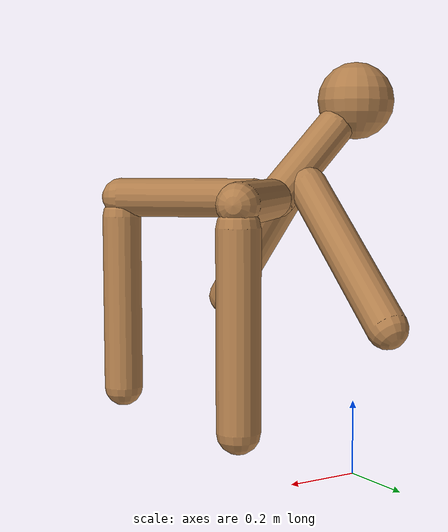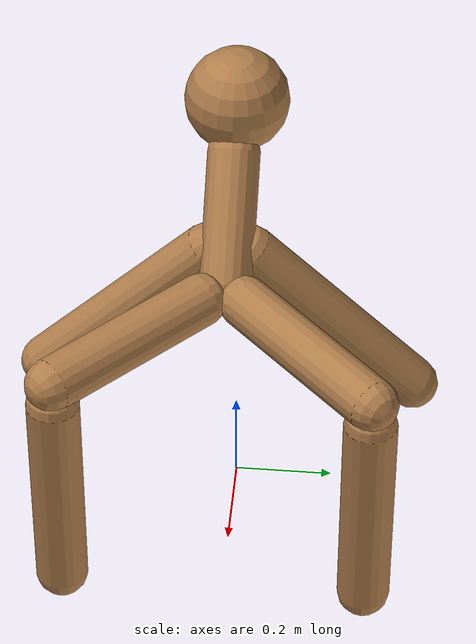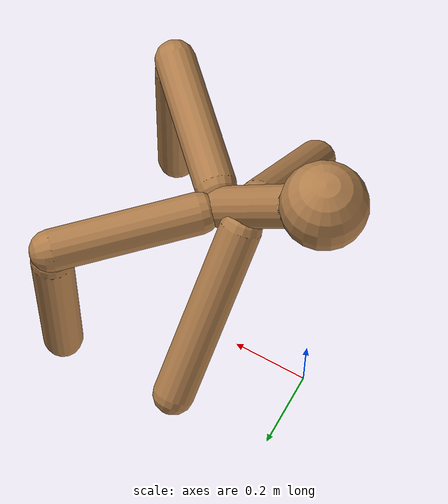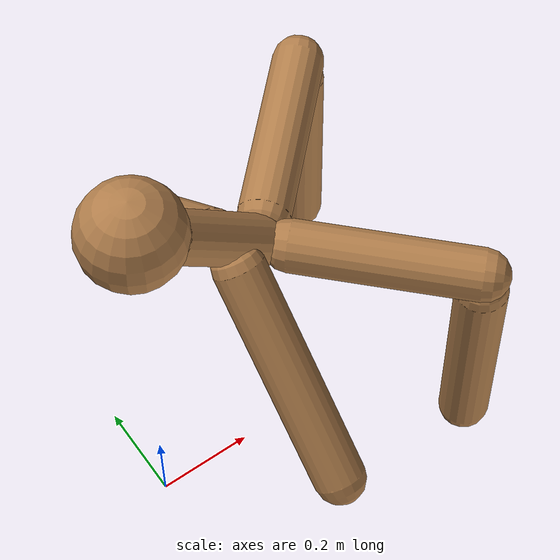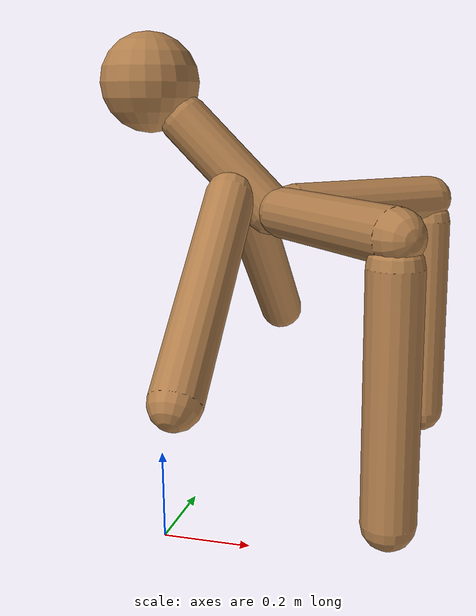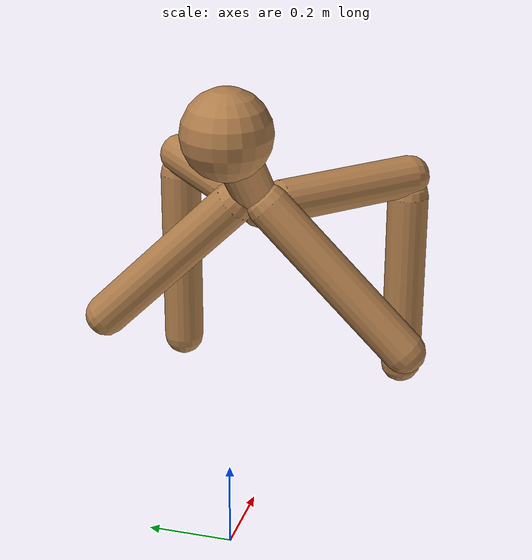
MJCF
<?xml version='1.0' encoding='UTF-8'?>
<!-- Universal Animal Template: unimal -->
<mujoco model="unimal">
  <compiler angle="degree"/>
  <size njmax="2000" nconmax="500"/>
  <option timestep=".005">
    <flag filterparent="disable"/>
  </option>
  <!-- Common defaults to make search space tractable -->
  <default>
    <!-- Define motor defaults -->
    <motor ctrlrange="-1 1" ctrllimited="true"/>
    <!-- Define joint defaults -->
    <default class="normal_joint">
      <joint type="hinge" damping="1" stiffness="1" armature="1" limited="true" range="-120 120" solimplimit="0 0.99 0.01"/>
    </default>
    <default class="walker_joint">
      <joint type="hinge" damping="0.2" stiffness="1" armature=".01" limited="true" range="-120 120" solimplimit="0 0.99 0.01"/>
    </default>
    <default class="stiff_joint">
      <joint type="hinge" damping="5" stiffness="10" armature=".01" limited="true" solimplimit="0 0.99 0.01"/>
    </default>
    <default class="free">
      <joint limited="false" damping="0" armature="0" stiffness="0"/>
    </default>
    <default class="growth_site">
      <site size="1e-6 1e-6 1e-6"/>
    </default>
    <default class="torso_growth_site">
      <site size="1e-6 1e-6 1e-6"/>
    </default>
    <default class="mirror_growth_site">
      <site size="1e-6 1e-6 1e-6"/>
    </default>
    <default class="btm_pos_site">
      <site size="1e-6 1e-6 1e-6"/>
    </default>
    <default class="box_face_site">
      <site size="1e-6 1e-6 1e-6"/>
    </default>
    <default class="imu_vel">
      <site type="box" size="0.05" rgba="1 0 0 0"/>
    </default>
    <default class="touch_site">
      <site group="3" rgba="0 0 1 .3"/>
    </default>
    <default class="food_site">
      <site material="food" size="0.15"/>
    </default>
    <!-- Define geom defaults -->
    <geom type="capsule" condim="3" friction="0.7 0.1 0.1" material="self"/>
  </default>
  <worldbody>
    <light diffuse="1 1 1" directional="true" exponent="1" pos="0 0 8" specular="0.1 0.1 0.1" dir="0 0 -1"/>
    <!-- Programatically generated xml goes here -->
    <body name="torso/0" pos="0 0 1.0">
      <joint name="root" type="free" class="free"/>
      <site name="root" class="imu_vel"/>
      <geom name="torso/0" type="sphere" size="0.1" condim="3" density="900"/>
      <camera name="side" pos="0 -7 2" xyaxes="1 0 0 0 1 2" mode="trackcom"/>
      <site name="torso/0" class="growth_site" pos="0 0 0"/>
      <site name="torso/btm_pos/0" class="btm_pos_site" pos="0 0 -0.1"/>
      <site name="torso/touch/0" class="touch_site" size="0.11"/>
      <site name="torso/vertical/0" class="torso_growth_site" pos="0 0 -0.1"/>
      <body name="limb/23" pos="0.07 0.0 -0.07">
        <joint name="limbx/23" type="hinge" class="normal_joint" range="-30 30" pos="-0.04 0.0 0.04" axis="0.7071 0.0 0.7071"/>
        <geom name="limb/23" type="capsule" fromto="0.0 0.0 0.0 0.18 0.0 -0.18" size="0.05" density="800"/>
        <site name="limb/mid/23" class="growth_site" pos="0.11 0.0 -0.11"/>
        <site name="limb/btm/23" class="growth_site" pos="0.18 0.0 -0.18"/>
        <site name="limb/btm_pos/23" class="btm_pos_site" pos="0.18 0.0 -0.18"/>
        <site name="limb/touch/23" class="touch_site" size="0.060000000000000005" fromto="0.0 0.0 0.0 0.18 0.0 -0.18" type="capsule"/>
        <body name="limb/33" pos="0.22 0.04 -0.18">
          <joint name="limbx/33" type="hinge" class="normal_joint" range="-30 0" pos="-0.04 -0.04 0.0" axis="0.5 -0.5 0.7071"/>
          <joint name="limby/33" type="hinge" class="normal_joint" range="-30 0" pos="-0.04 -0.04 0.0" axis="-0.5 0.5 0.7071"/>
          <geom name="limb/33" type="capsule" fromto="0.0 0.0 0.0 0.25 0.25 0.0" size="0.05" density="800"/>
          <site name="limb/mid/33" class="mirror_growth_site" pos="0.14 0.14 0.0"/>
          <site name="limb/btm/33" class="mirror_growth_site" pos="0.25 0.25 0.0"/>
          <site name="limb/btm_pos/33" class="btm_pos_site" pos="0.28 0.28 0.0"/>
          <site name="limb/touch/33" class="touch_site" size="0.060000000000000005" fromto="0.0 0.0 0.0 0.25 0.25 0.0" type="capsule"/>
          <body name="limb/37" pos="0.25 0.25 -0.05">
            <joint name="limbx/37" type="hinge" class="normal_joint" range="-30 30" pos="0.0 0.0 0.05" axis="1.0 0.0 0.0"/>
            <joint name="limby/37" type="hinge" class="normal_joint" range="-30 30" pos="0.0 0.0 0.05" axis="0.0 1.0 0.0"/>
            <geom name="limb/37" type="capsule" fromto="0.0 0.0 0.0 0.0 0.0 -0.45" size="0.05" density="800"/>
            <site name="limb/mid/37" class="mirror_growth_site" pos="0.0 0.0 -0.25"/>
            <site name="limb/btm/37" class="mirror_growth_site" pos="0.0 0.0 -0.45"/>
            <site name="limb/btm_pos/37" class="btm_pos_site" pos="0.0 0.0 -0.5"/>
            <site name="limb/touch/37" class="touch_site" size="0.060000000000000005" fromto="0.0 0.0 0.0 0.0 0.0 -0.45" type="capsule"/>
          </body>
        </body>
        <body name="limb/34" pos="0.22 -0.04 -0.18">
          <joint name="limbx/34" type="hinge" class="normal_joint" range="-30 0" pos="-0.04 0.04 0.0" axis="0.5 0.5 0.7071"/>
          <joint name="limby/34" type="hinge" class="normal_joint" range="-30 0" pos="-0.04 0.04 0.0" axis="0.5 0.5 -0.7071"/>
          <geom name="limb/34" type="capsule" fromto="0.0 0.0 0.0 0.25 -0.25 0.0" size="0.05" density="800"/>
          <site name="limb/mid/34" class="mirror_growth_site" pos="0.14 -0.14 0.0"/>
          <site name="limb/btm/34" class="mirror_growth_site" pos="0.25 -0.25 0.0"/>
          <site name="limb/btm_pos/34" class="btm_pos_site" pos="0.28 -0.28 0.0"/>
          <site name="limb/touch/34" class="touch_site" size="0.060000000000000005" fromto="0.0 0.0 0.0 0.25 -0.25 0.0" type="capsule"/>
          <body name="limb/38" pos="0.25 -0.25 -0.05">
            <joint name="limbx/38" type="hinge" class="normal_joint" range="-30 30" pos="0.0 0.0 0.05" axis="1.0 0.0 0.0"/>
            <joint name="limby/38" type="hinge" class="normal_joint" range="-30 30" pos="0.0 0.0 0.05" axis="0.0 1.0 0.0"/>
            <geom name="limb/38" type="capsule" fromto="0.0 0.0 0.0 0.0 0.0 -0.45" size="0.05" density="800"/>
            <site name="limb/mid/38" class="mirror_growth_site" pos="0.0 0.0 -0.25"/>
            <site name="limb/btm/38" class="mirror_growth_site" pos="0.0 0.0 -0.45"/>
            <site name="limb/btm_pos/38" class="btm_pos_site" pos="0.0 0.0 -0.5"/>
            <site name="limb/touch/38" class="touch_site" size="0.060000000000000005" fromto="0.0 0.0 0.0 0.0 0.0 -0.45" type="capsule"/>
          </body>
        </body>
        <body name="limb/39" pos="0.11 0.04 -0.15">
          <joint name="limbx/39" type="hinge" class="normal_joint" range="-45 0" pos="0.0 -0.04 0.04" axis="1.0 0.0 0.0"/>
          <joint name="limby/39" type="hinge" class="normal_joint" range="-60 0" pos="0.0 -0.04 0.04" axis="0.0 0.7071 0.7071"/>
          <geom name="limb/39" type="capsule" fromto="0.0 0.0 0.0 0.0 0.32 -0.32" size="0.05" density="800"/>
          <site name="limb/mid/39" class="mirror_growth_site" pos="0.0 0.18 -0.18"/>
          <site name="limb/btm/39" class="mirror_growth_site" pos="0.0 0.32 -0.32"/>
          <site name="limb/btm_pos/39" class="btm_pos_site" pos="0.0 0.35 -0.35"/>
          <site name="limb/touch/39" class="touch_site" size="0.060000000000000005" fromto="0.0 0.0 0.0 0.0 0.32 -0.32" type="capsule"/>
        </body>
        <body name="limb/40" pos="0.11 -0.04 -0.15">
          <joint name="limbx/40" type="hinge" class="normal_joint" range="-45 0" pos="0.0 0.04 0.04" axis="1.0 0.0 -0.0"/>
          <joint name="limby/40" type="hinge" class="normal_joint" range="-60 0" pos="0.0 0.04 0.04" axis="-0.0 0.7071 -0.7071"/>
          <geom name="limb/40" type="capsule" fromto="0.0 0.0 0.0 0.0 -0.32 -0.32" size="0.05" density="800"/>
          <site name="limb/mid/40" class="mirror_growth_site" pos="0.0 -0.18 -0.18"/>
          <site name="limb/btm/40" class="mirror_growth_site" pos="0.0 -0.32 -0.32"/>
          <site name="limb/btm_pos/40" class="btm_pos_site" pos="0.0 -0.35 -0.35"/>
          <site name="limb/touch/40" class="touch_site" size="0.060000000000000005" fromto="0.0 0.0 0.0 0.0 -0.32 -0.32" type="capsule"/>
        </body>
      </body>
    </body>
  </worldbody>
  <actuator>
    <motor joint="limbx/23" gear="200" name="limbx/23"/>
    <motor joint="limbx/33" gear="250" name="limbx/33"/>
    <motor joint="limby/33" gear="250" name="limby/33"/>
    <motor joint="limbx/37" gear="200" name="limbx/37"/>
    <motor joint="limby/37" gear="150" name="limby/37"/>
    <motor joint="limbx/34" gear="250" name="limbx/34"/>
    <motor joint="limby/34" gear="250" name="limby/34"/>
    <motor joint="limbx/38" gear="200" name="limbx/38"/>
    <motor joint="limby/38" gear="150" name="limby/38"/>
    <motor joint="limbx/39" gear="300" name="limbx/39"/>
    <motor joint="limby/39" gear="300" name="limby/39"/>
    <motor joint="limbx/40" gear="300" name="limbx/40"/>
    <motor joint="limby/40" gear="300" name="limby/40"/>
  </actuator>
  <sensor>
    <accelerometer name="torso_accel" site="root"/>
    <gyro name="torso_gyro" site="root"/>
    <velocimeter name="torso_vel" site="root"/>
    <subtreeangmom name="unimal_am" body="torso/0"/>
    <touch name="torso/0" site="torso/touch/0"/>
    <touch name="limb/23" site="limb/touch/23"/>
    <touch name="limb/33" site="limb/touch/33"/>
    <touch name="limb/37" site="limb/touch/37"/>
    <touch name="limb/34" site="limb/touch/34"/>
    <touch name="limb/38" site="limb/touch/38"/>
    <touch name="limb/39" site="limb/touch/39"/>
    <touch name="limb/40" site="limb/touch/40"/>
  </sensor>
  <!-- Add hfield assets -->
  <asset/>
  <!-- List of contacts to exclude -->
  <contact>
    <exclude name="limb/33:limb/34" body1="limb/33" body2="limb/34"/>
    <exclude name="limb/39:limb/40" body1="limb/39" body2="limb/40"/>
  </contact>
  <!-- Define material, texture etc -->
  <asset>
    <material name="grid" texture="grid" texrepeat="1 1" texuniform="true" reflectance="0.1"/>
    <material name="hfield" texture="hfield" texrepeat="1 1" texuniform="true" reflectance="0.1"/>
    <material name="wall" texture="wall" texrepeat="1 1" texuniform="true" reflectance=".5"/>
    <material name="platform" texture="platform" texrepeat="1 1" texuniform="true" reflectance=".5"/>
    <material name="boundary" texture="boundary" texrepeat="1 1" texuniform="true" reflectance=".5"/>
    <material name="jump" texture="jump" texrepeat="1 1" texuniform="true" reflectance=".5"/>
    <material name="goal" rgba="1 0 0 1"/>
    <material name="food" rgba="0 0 1 1" emission="1"/>
    <material name="init_position" rgba="0 1 0 0.7"/>
    <material name="self" rgba=".7 .5 .3 1"/>
    <material name="self_invisible" rgba=".7 .5 .3 0"/>
    <material name="self_default" rgba=".7 .5 .3 1"/>
    <material name="self_highlight" rgba="0 .5 .3 1"/>
    <material name="effector" rgba=".7 .4 .2 1"/>
    <material name="effector_default" rgba=".7 .4 .2 1"/>
    <material name="effector_highlight" rgba="0 .5 .3 1"/>
    <material name="decoration" rgba=".3 .5 .7 1"/>
    <material name="eye" rgba="0 .2 1 1"/>
    <material name="target" rgba=".6 .3 .3 1"/>
    <material name="target_default" rgba=".6 .3 .3 1"/>
    <material name="target_highlight" rgba=".6 .3 .3 .4"/>
    <material name="site" rgba=".5 .5 .5 .3"/>
    <material name="ball" texture="ball"/>
  </asset>
  <asset>
    <texture name="grid" type="2d" builtin="checker" rgb1="0.4 0.4 0.4" rgb2="0.4 0.4 0.4" width="300" height="300" mark="edge" markrgb="0.2 0.2 0.2"/>
    <texture name="hfield" type="2d" builtin="checker" rgb1="0.4 0.4 0.4" rgb2="0.4 0.4 0.4" width="300" height="300" mark="edge" markrgb="0.2 0.2 0.2"/>
    <texture name="wall" type="2d" builtin="flat" rgb1="0.9 0.7 0" rgb2="0.9 0.7 0" width="300" height="300"/>
    <texture name="platform" type="2d" builtin="flat" rgb1="0.3 0 0.8" rgb2="0.3 0 0.8" width="300" height="300"/>
    <texture name="boundary" type="2d" builtin="flat" rgb1="0.3 0.3 0.3" rgb2="0.3 0.3 0.3" width="300" height="300"/>
    <texture name="jump" type="2d" builtin="flat" rgb1="0.3 0.3 0.3" rgb2="0.3 0.3 0.3" width="300" height="300"/>
    <texture name="skybox" type="skybox" builtin="gradient" rgb1="1 1 1" rgb2="0.6 0.6 0.6" width="800" height="800"/>
    <texture name="ball" builtin="checker" mark="cross" width="151" height="151" rgb1="0.1 0.1 0.1" rgb2="0.9 0.9 0.9" markrgb="1 1 1"/>
  </asset>
  <visual>
    <headlight ambient="0.6 0.6 0.6" diffuse="0.3 0.3 0.3" specular="0 0 0"/>
    <map znear=".01" shadowclip="0.5"/>
    <quality shadowsize="16384"/>
  </visual>
</mujoco>
